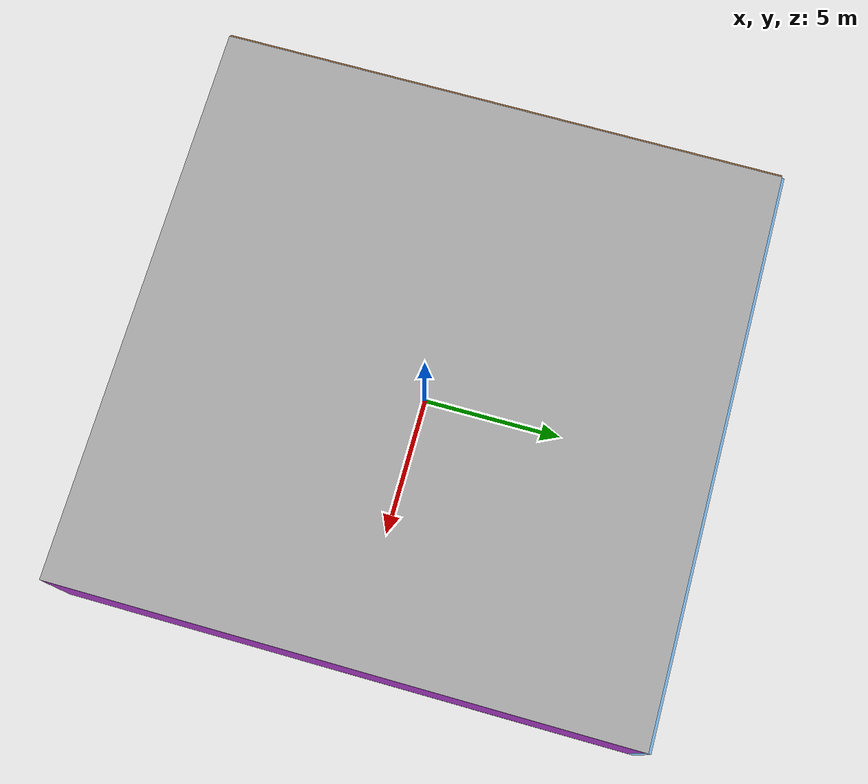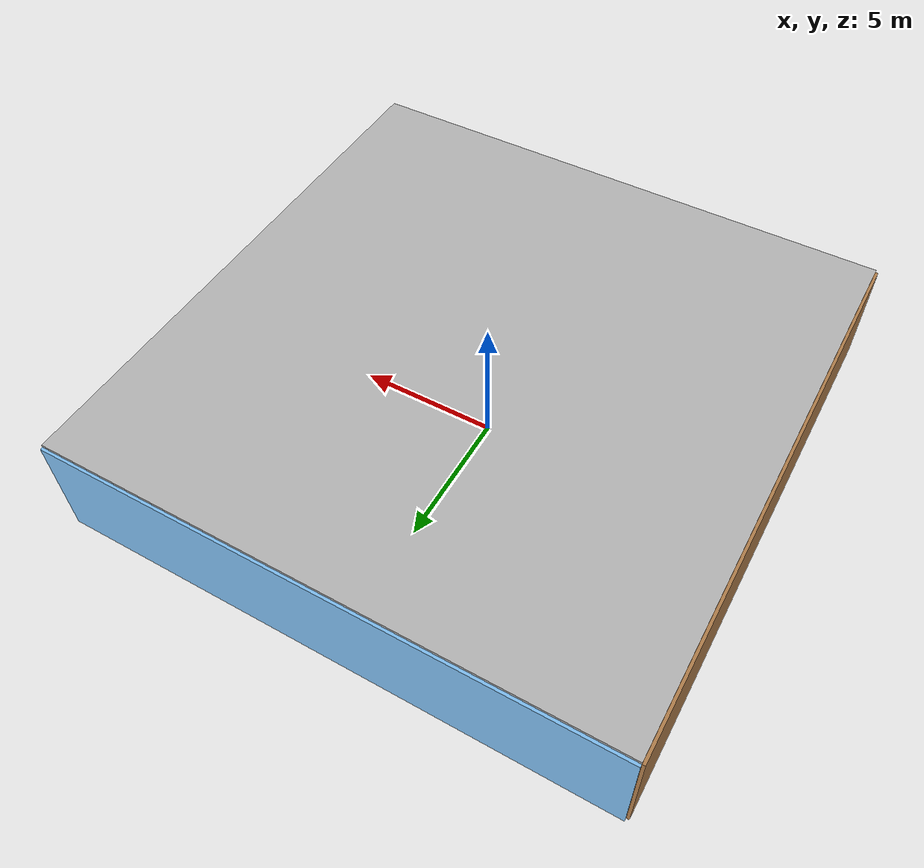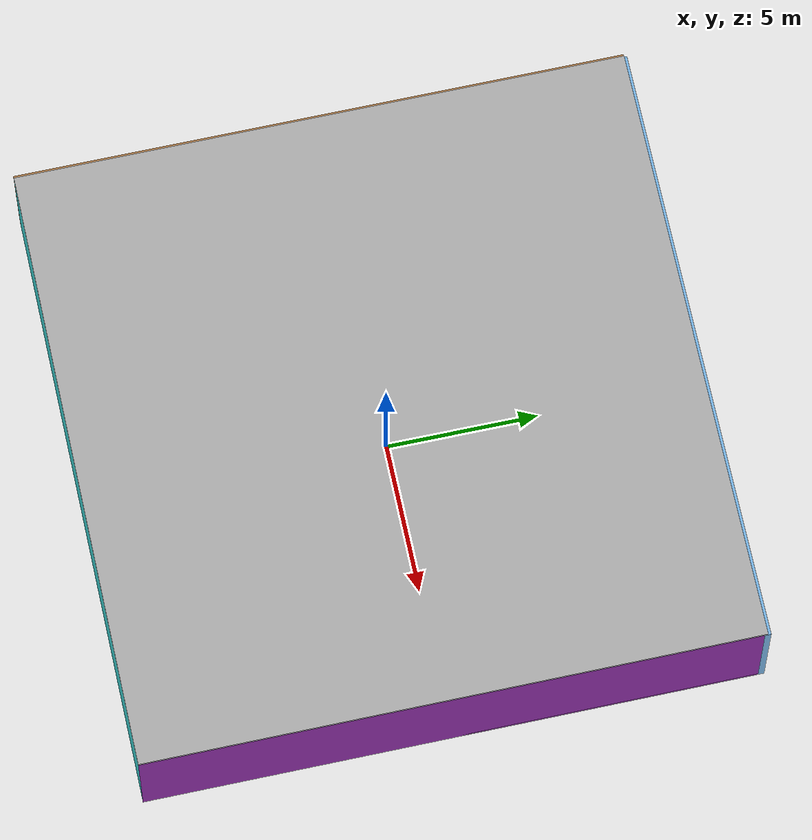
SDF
<sdf version="1.4">
 <world name="default">
  <physics type="ode">
   <max_step_size>0.001</max_step_size>
   <real_time_factor>1</real_time_factor>
   <real_time_update_rate>1000</real_time_update_rate>
   <gravity>0 0 -9.8</gravity>
  </physics>
  <scene><ambient>0.4 0.4 0.4 1</ambient><background>0.7 0.7 0.7 1</background><shadows>1</shadows></scene>
  <model name="Surrounding">
   <static>1</static>
   <link name="Ceiling">
    <collision name="Ceiling_Collision"><geometry><box><size>20 20 0.1</size></box></geometry></collision>
    <visual name="Ceiling_Visual">
     <geometry><box><size>20 20 0.1</size></box></geometry>
     <material>
      <script><uri>file://media/materials/scripts/gazebo.material</uri><name>Gazebo/JointAnchor</name></script>
     </material>
    </visual>
    <pose>0 0 4.05 0 0 0</pose>
   </link>
   <link name="Wall_South">
    <collision name="Wall_South_Collision">
     <geometry><box><size>20 0 4</size></box></geometry>
     <pose>0 0 2 0 -0 0</pose>
    </collision>
    <visual name="Wall_South_Visual">
     <pose>0 0 2 0 -0 0</pose>
     <geometry><box><size>20 0 4</size></box></geometry>
     <material>
      <script><uri>file://media/materials/scripts/gazebo.material</uri><name>Gazebo/Turquoise</name></script>
     </material>
    </visual>
    <velocity_decay><linear>0</linear><angular>0</angular></velocity_decay>
    <pose>0 -10 0 0 -0 0</pose>
   </link>
   <link name="Wall_East">
    <collision name="Wall_21_Collision">
     <geometry><box><size>20 0 4</size></box></geometry>
     <pose>0 0 2 0 -0 0</pose>
    </collision>
    <visual name="Wall_21_Visual">
     <pose>0 0 2 0 -0 0</pose>
     <geometry><box><size>20 0 4</size></box></geometry>
     <material>
      <script><uri>file://media/materials/scripts/gazebo.material</uri><name>Gazebo/Purple</name></script>
     </material>
    </visual>
    <velocity_decay><linear>0</linear><angular>0</angular></velocity_decay>
    <pose>10 0 0 0 -0 1.5708</pose>
   </link>
   <link name="Wall_North">
    <collision name="Wall_22_Collision">
     <geometry><box><size>20 0.2 4</size></box></geometry>
     <pose>0 0 2 0 -0 0</pose>
    </collision>
    <visual name="Wall_22_Visual">
     <pose>0 0 2 0 -0 0</pose>
     <geometry><box><size>20 0.2 4</size></box></geometry>
     <material>
      <script><uri>file://media/materials/scripts/gazebo.material</uri><name>Gazebo/SkyBlue</name></script>
     </material>
    </visual>
    <velocity_decay><linear>0</linear><angular>0</angular></velocity_decay>
    <pose>0 10 0 0 -0 0</pose>
   </link>
   <link name="Wall_West">
    <collision name="Wall_23_Collision">
     <geometry><box><size>20 0.2 4</size></box></geometry>
     <pose>0 0 2 0 -0 0</pose>
    </collision>
    <visual name="Wall_23_Visual">
     <pose>0 0 2 0 -0 0</pose>
     <geometry><box><size>20 0.2 4</size></box></geometry>
     <material>
      <script><uri>file://media/materials/scripts/gazebo.material</uri><name>Gazebo/Wood</name></script>
     </material>
    </visual>
    <velocity_decay><linear>0</linear><angular>0</angular></velocity_decay>
    <pose>-10 0 0 0 0 -1.5708</pose>
   </link>
   <link name="Ground_link">
    <collision name="collision">
     <pose>0 0 .05 0 -0 0</pose>
     <geometry><box><size>20 20 0.1</size></box></geometry>
    </collision>
    <visual name="visual">
     <pose>0 0 .05 0 -0 0</pose>
     <geometry><box><size>20 20 0.1</size></box></geometry>
     <material>
      <script><uri>file://media/materials/scripts/gazebo.material</uri><name>Gazebo/PurpleGlow</name></script>
     </material>
    </visual>
   </link>
   <static>1</static>
  </model>
  <spherical_coordinates>
   <surface_model>EARTH_WGS84</surface_model>
   <latitude_deg>0</latitude_deg>
   <longitude_deg>0</longitude_deg>
   <elevation>0</elevation>
   <heading_deg>0</heading_deg>
  </spherical_coordinates>
  <light name="lightball_0" type="diffuse">
   <diffuse>0.8 0.8 0.8 1</diffuse>
   <specular>0.2 0.2 0.2 1</specular>
   <attenuation>
    <range>100</range>
    <constant>0.7</constant>
    <linear>0.01</linear>
    <quadratic>0.001</quadratic>
   </attenuation>
   <direction>-0.5 0.1 -0.9</direction>
   <pose>1.23997627463 -6.80838253678 2.50573047109 0 0 0</pose>
  </light>
  <light name="lightball_1" type="diffuse">
   <diffuse>0.8 0.8 0.8 1</diffuse>
   <specular>0.2 0.2 0.2 1</specular>
   <attenuation>
    <range>100</range>
    <constant>0.7</constant>
    <linear>0.01</linear>
    <quadratic>0.001</quadratic>
   </attenuation>
   <direction>-0.5 0.1 -0.9</direction>
   <pose>4.61276636089 8.82637093731 2.30650114296 0 0 0</pose>
  </light>
  <light name="lightball_2" type="diffuse">
   <diffuse>0.8 0.8 0.8 1</diffuse>
   <specular>0.2 0.2 0.2 1</specular>
   <attenuation>
    <range>100</range>
    <constant>0.7</constant>
    <linear>0.01</linear>
    <quadratic>0.001</quadratic>
   </attenuation>
   <direction>-0.5 0.1 -0.9</direction>
   <pose>0.310616654212 8.68732685541 3.40895027954 0 0 0</pose>
  </light>
  <light name="lightball_3" type="diffuse">
   <diffuse>0.8 0.8 0.8 1</diffuse>
   <specular>0.2 0.2 0.2 1</specular>
   <attenuation>
    <range>100</range>
    <constant>0.7</constant>
    <linear>0.01</linear>
    <quadratic>0.001</quadratic>
   </attenuation>
   <direction>-0.5 0.1 -0.9</direction>
   <pose>-2.10091161205 6.22926884076 0.564703070906 0 0 0</pose>
  </light>
  <light name="lightball_4" type="diffuse">
   <diffuse>0.8 0.8 0.8 1</diffuse>
   <specular>0.2 0.2 0.2 1</specular>
   <attenuation>
    <range>100</range>
    <constant>0.7</constant>
    <linear>0.01</linear>
    <quadratic>0.001</quadratic>
   </attenuation>
   <direction>-0.5 0.1 -0.9</direction>
   <pose>6.32144031958 7.30632870516 1.07658364671 0 0 0</pose>
  </light>
  <include><uri>model://cabinet</uri><pose>-6.41028761386 -8.38077034316 0 0 0 1.79951526087</pose></include>
  <include>
   <uri>model://construction_cone</uri>
   <pose>-1.88012234424 -0.823779338026 0 0 0 1.91360048943</pose>
  </include>
  <include><uri>model://cabinet</uri><pose>-2.13392791006 3.50582046753 0 0 0 2.95451801038</pose></include>
  <include><uri>model://cabinet</uri><pose>2.64122914329 -5.65418768555 0 0 0 0.417203445696</pose></include>
  <include><uri>model://cabinet</uri><pose>8.2030094676 -6.94932499858 0 0 0 1.80238229637</pose></include>
  <include><uri>model://cabinet</uri><pose>8.33486625892 1.54132759101 0 0 0 2.60350058491</pose></include>
 </world>
</sdf>

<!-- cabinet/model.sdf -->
<sdf version="1.5">
  <model name="cabinet">
    <static>true</static>
    <link name="cabinet_bottom_plate">
      <inertial>
        <pose>0 0 -1 0 0 0</pose>
        <inertia>
          <ixx>2.050000</ixx>
          <ixy>0</ixy>
          <ixz>0</ixz>
          <iyy>2.050000</iyy>
          <iyz>0</iyz>
          <izz>2.050000</izz>
        </inertia>
        <mass>25.000000</mass>
      </inertial>
      <collision name="cabinet_bottom_plate_geom">
        <pose>0 0 0.010000 0 0 0</pose>
        <geometry>
          <box>
            <size>0.450000 0.450000 0.020000</size>
          </box>
        </geometry>
      </collision>
      <visual name="cabinet_bottom_plate_geom_visual">
        <pose>0 0 0.010000 0 0 0</pose>
        <geometry>
          <box>
            <size>0.450000 0.450000 0.020000</size>
          </box>
        </geometry>
        <material>
          <script>
            <uri>model://media/materials/scripts/gazebo.material</uri>
            <name>Gazebo/Wood</name>
          </script>
        </material>
      </visual>
      <collision name="cabinet_bottom_plate_geom_cabinet_back_plate">
        <pose>0.235000 0 0.510000 0 0 0</pose>
        <geometry>
          <box>
            <size>0.020000 0.450000 1.020000</size>
          </box>
        </geometry>
      </collision>
      <visual name="cabinet_bottom_plate_geom_cabinet_back_plate_visual">
        <pose>0.235000 0 0.510000 0 0 0</pose>
        <geometry>
          <box>
            <size>0.020000 0.450000 1.020000</size>
          </box>
        </geometry>
        <material>
          <script>
            <uri>model://media/materials/scripts/gazebo.material</uri>
            <name>Gazebo/Wood</name>
          </script>
        </material>
      </visual>
      <collision name="cabinet_bottom_plate_geom_cabinet_left_plate">
        <pose>0 0.235000 0.510000 0 0 0</pose>
        <geometry>
          <box>
            <size>0.450000 0.020000 1.020000</size>
          </box>
        </geometry>
      </collision>
      <visual name="cabinet_bottom_plate_geom_cabinet_left_plate_visual">
        <pose>0 0.235000 0.510000 0 0 0</pose>
        <geometry>
          <box>
            <size>0.450000 0.020000 1.020000</size>
          </box>
        </geometry>
        <material>
          <script>
            <uri>model://media/materials/scripts/gazebo.material</uri>
            <name>Gazebo/Wood</name>
          </script>
        </material>
      </visual>
      <collision name="cabinet_bottom_plate_geom_cabinet_middle_plate">
        <pose>0 0 0.510000 0 0 0</pose>
        <geometry>
          <box>
            <size>0.450000 0.450000 0.020000</size>
          </box>
        </geometry>
      </collision>
      <visual name="cabinet_bottom_plate_geom_cabinet_middle_plate_visual">
        <pose>0 0 0.510000 0 0 0</pose>
        <geometry>
          <box>
            <size>0.450000 0.450000 0.020000</size>
          </box>
        </geometry>
        <material>
          <script>
            <uri>model://media/materials/scripts/gazebo.material</uri>
            <name>Gazebo/Wood</name>
          </script>
        </material>
      </visual>
      <collision name="cabinet_bottom_plate_geom_cabinet_right_plate">
        <pose>0 -0.235000 0.510000 0 0 0</pose>
        <geometry>
          <box>
            <size>0.450000 0.020000 1.020000</size>
          </box>
        </geometry>
      </collision>
      <visual name="cabinet_bottom_plate_geom_cabinet_right_plate_visual">
        <pose>0 -0.235000 0.510000 0 0 0</pose>
        <geometry>
          <box>
            <size>0.450000 0.020000 1.020000</size>
          </box>
        </geometry>
        <material>
          <script>
            <uri>model://media/materials/scripts/gazebo.material</uri>
            <name>Gazebo/Wood</name>
          </script>
        </material>
      </visual>
      <collision name="cabinet_bottom_plate_geom_cabinet_top_plate">
        <pose>0 0 1.010000 0 0 0</pose>
        <geometry>
          <box>
            <size>0.450000 0.450000 0.020000</size>
          </box>
        </geometry>
      </collision>
      <visual name="cabinet_bottom_plate_geom_cabinet_top_plate_visual">
        <pose>0 0 1.010000 0 0 0</pose>
        <geometry>
          <box>
            <size>0.450000 0.450000 0.020000</size>
          </box>
        </geometry>
        <material>
          <script>
            <uri>model://media/materials/scripts/gazebo.material</uri>
            <name>Gazebo/Wood</name>
          </script>
        </material>
      </visual>
    </link>
  </model>
</sdf>

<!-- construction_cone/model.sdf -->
<sdf version="1.5">
  <model name="Construction Cone">
    <link name="link">
      <collision name="collision">
        <geometry>
          <mesh>
            <scale>10 10 10</scale>
            <uri>file://isr-testbed/construction_cone/meshes/construction_cone.dae</uri>
          </mesh>
        </geometry>
      </collision>
      <visual name="visual">
        <geometry>
          <mesh>
            <scale>10 10 10</scale>
            <uri>file://isr-testbed/construction_cone/meshes/construction_cone.dae</uri>
          </mesh>
        </geometry>
      </visual>
    </link>
  </model>
</sdf>
